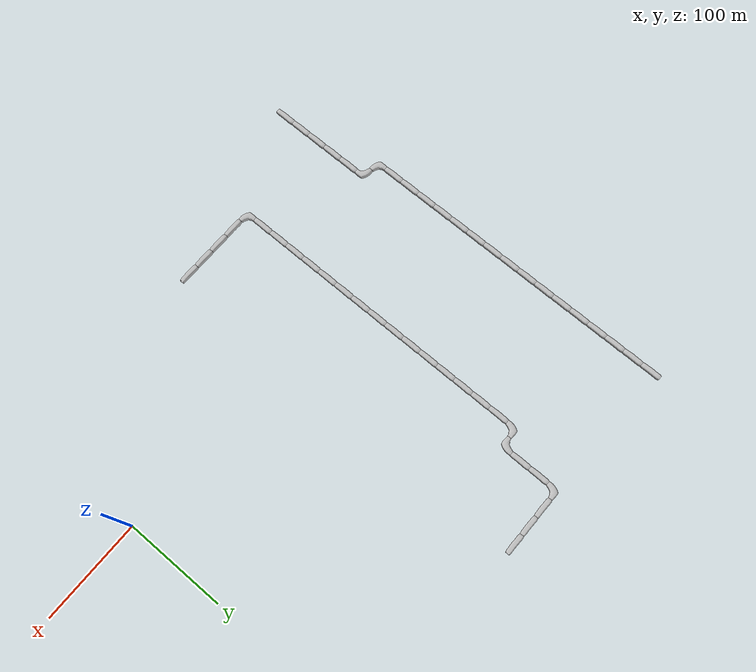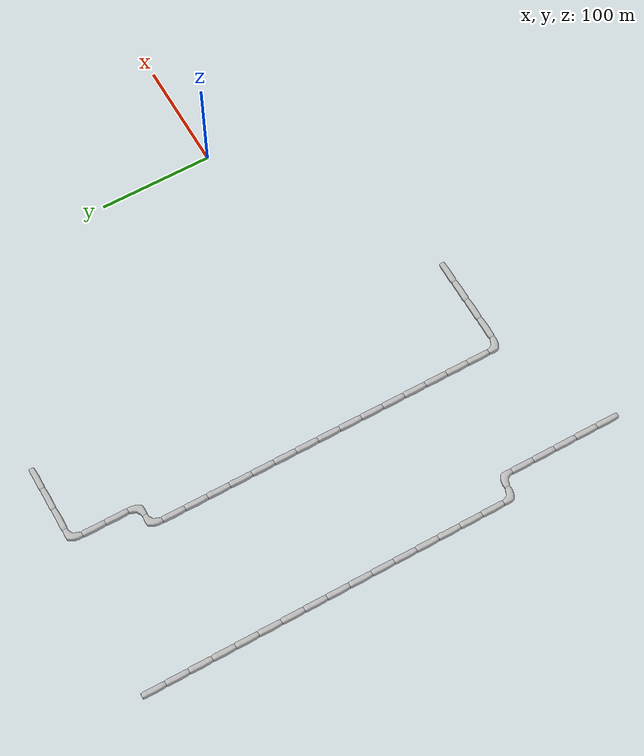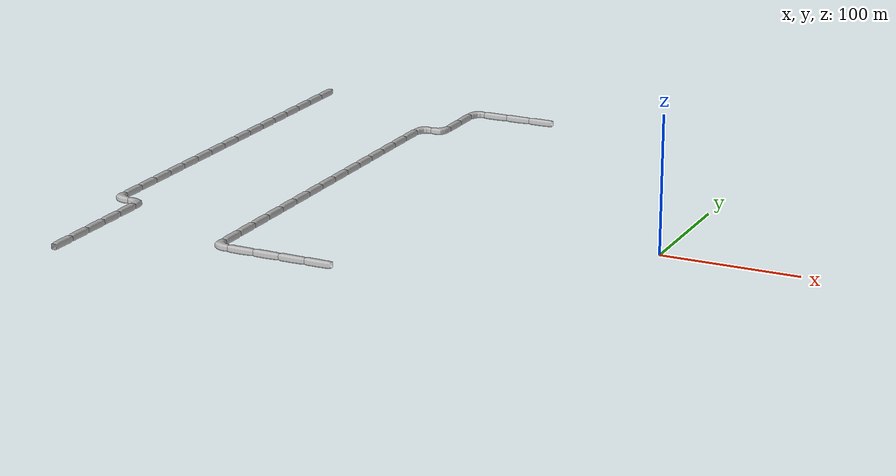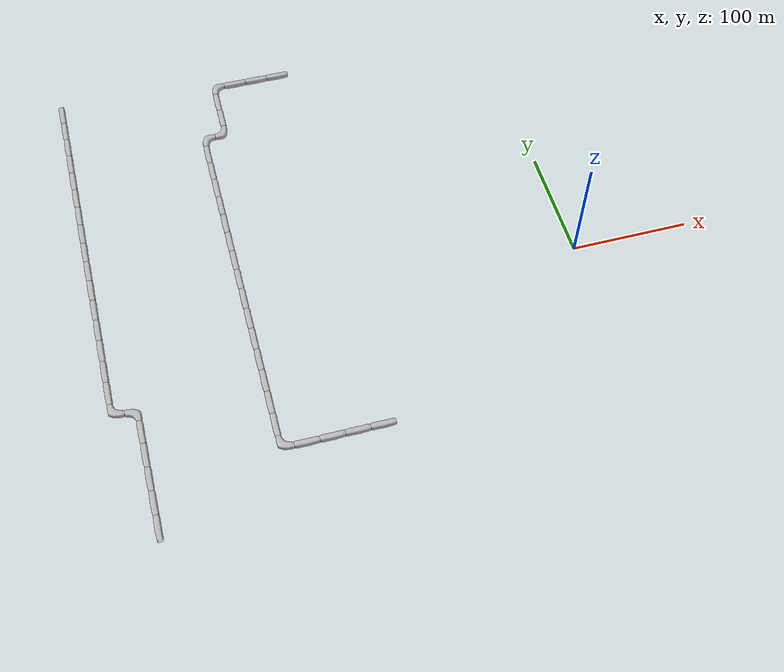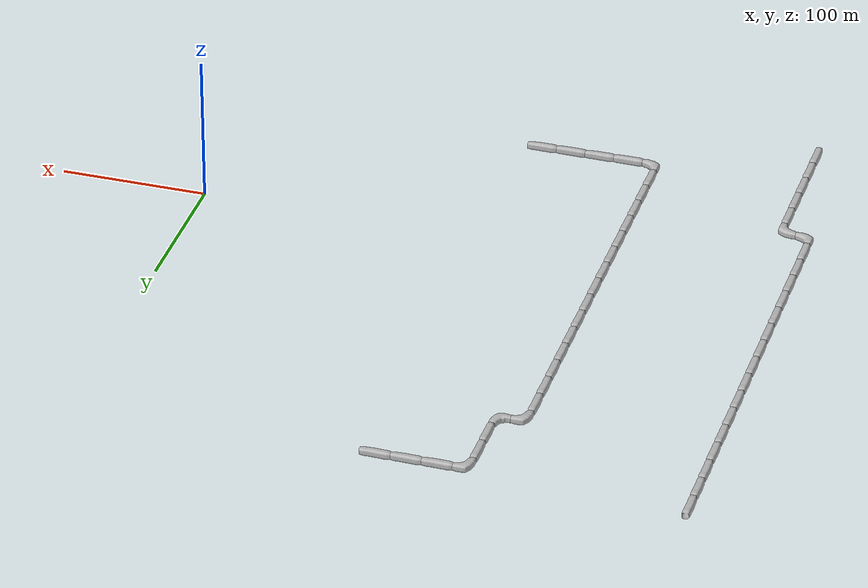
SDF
<sdf version="1.6">
 <world name="cave_8000_32">
  <include>
   <static>true</static>
   <name>cave_-19_-8</name>
   <pose>-380 -160 0 0 0 0.0</pose>
   <uri>model://cave_straight_20m</uri>
  </include>
  <include>
   <static>true</static>
   <name>cave_-19_-7</name>
   <pose>-380 -140 0 0 0 0.0</pose>
   <uri>model://cave_straight_20m</uri>
  </include>
  <include>
   <static>true</static>
   <name>cave_-19_-6</name>
   <pose>-380 -120 0 0 0 0.0</pose>
   <uri>model://cave_straight_20m</uri>
  </include>
  <include>
   <static>true</static>
   <name>cave_-19_-5</name>
   <pose>-380 -100 0 0 0 0.0</pose>
   <uri>model://cave_straight_20m</uri>
  </include>
  <include>
   <static>true</static>
   <name>cave_-19_-4</name>
   <pose>-380 -80 0 0 0 0.0</pose>
   <uri>model://cave_straight_20m</uri>
  </include>
  <include>
   <static>true</static>
   <name>cave_-19_-3</name>
   <pose>-380 -60 0 0 0 3.141592653589793</pose>
   <uri>model://cave_L_20m</uri>
  </include>
  <include>
   <static>true</static>
   <name>cave_-20_-3</name>
   <pose>-400 -60 0 0 0 0.0</pose>
   <uri>model://cave_L_20m</uri>
  </include>
  <include>
   <static>true</static>
   <name>cave_-20_-2</name>
   <pose>-400 -40 0 0 0 0.0</pose>
   <uri>model://cave_straight_20m</uri>
  </include>
  <include>
   <static>true</static>
   <name>cave_-20_-1</name>
   <pose>-400 -20 0 0 0 0.0</pose>
   <uri>model://cave_straight_20m</uri>
  </include>
  <include>
   <static>true</static>
   <name>cave_-20_0</name>
   <pose>-400 0 0 0 0 0.0</pose>
   <uri>model://cave_straight_20m</uri>
  </include>
  <include>
   <static>true</static>
   <name>cave_-20_1</name>
   <pose>-400 20 0 0 0 0.0</pose>
   <uri>model://cave_straight_20m</uri>
  </include>
  <include>
   <static>true</static>
   <name>cave_-20_2</name>
   <pose>-400 40 0 0 0 0.0</pose>
   <uri>model://cave_straight_20m</uri>
  </include>
  <include>
   <static>true</static>
   <name>cave_-20_3</name>
   <pose>-400 60 0 0 0 0.0</pose>
   <uri>model://cave_straight_20m</uri>
  </include>
  <include>
   <static>true</static>
   <name>cave_-20_4</name>
   <pose>-400 80 0 0 0 0.0</pose>
   <uri>model://cave_straight_20m</uri>
  </include>
  <include>
   <static>true</static>
   <name>cave_-20_5</name>
   <pose>-400 100 0 0 0 0.0</pose>
   <uri>model://cave_straight_20m</uri>
  </include>
  <include>
   <static>true</static>
   <name>cave_-20_6</name>
   <pose>-400 120 0 0 0 0.0</pose>
   <uri>model://cave_straight_20m</uri>
  </include>
  <include>
   <static>true</static>
   <name>cave_-20_7</name>
   <pose>-400 140 0 0 0 0.0</pose>
   <uri>model://cave_straight_20m</uri>
  </include>
  <include>
   <static>true</static>
   <name>cave_-20_8</name>
   <pose>-400 160 0 0 0 0.0</pose>
   <uri>model://cave_straight_20m</uri>
  </include>
  <include>
   <static>true</static>
   <name>cave_-20_9</name>
   <pose>-400 180 0 0 0 0.0</pose>
   <uri>model://cave_straight_20m</uri>
  </include>
  <include>
   <static>true</static>
   <name>cave_-20_10</name>
   <pose>-400 200 0 0 0 0.0</pose>
   <uri>model://cave_straight_20m</uri>
  </include>
  <include>
   <static>true</static>
   <name>cave_-20_11</name>
   <pose>-400 220 0 0 0 0.0</pose>
   <uri>model://cave_straight_20m</uri>
  </include>
  <include>
   <static>true</static>
   <name>cave_-20_12</name>
   <pose>-400 240 0 0 0 0.0</pose>
   <uri>model://cave_straight_20m</uri>
  </include>
  <include>
   <static>true</static>
   <name>cave_-20_13</name>
   <pose>-400 260 0 0 0 0.0</pose>
   <uri>model://cave_straight_20m</uri>
  </include>
  <include>
   <static>true</static>
   <name>cave_-10_-6</name>
   <pose>-200 -120 0 0 0 1.5707963267948966</pose>
   <uri>model://cave_straight_20m</uri>
  </include>
  <include>
   <static>true</static>
   <name>cave_-11_-6</name>
   <pose>-220 -120 0 0 0 1.5707963267948966</pose>
   <uri>model://cave_straight_20m</uri>
  </include>
  <include>
   <static>true</static>
   <name>cave_-12_-6</name>
   <pose>-240 -120 0 0 0 1.5707963267948966</pose>
   <uri>model://cave_straight_20m</uri>
  </include>
  <include>
   <static>true</static>
   <name>cave_-13_-6</name>
   <pose>-260 -120 0 0 0 1.5707963267948966</pose>
   <uri>model://cave_straight_20m</uri>
  </include>
  <include>
   <static>true</static>
   <name>cave_-14_-6</name>
   <pose>-280 -120 0 0 0 0.0</pose>
   <uri>model://cave_L_20m</uri>
  </include>
  <include>
   <static>true</static>
   <name>cave_-14_-5</name>
   <pose>-280 -100 0 0 0 0.0</pose>
   <uri>model://cave_straight_20m</uri>
  </include>
  <include>
   <static>true</static>
   <name>cave_-14_-4</name>
   <pose>-280 -80 0 0 0 0.0</pose>
   <uri>model://cave_straight_20m</uri>
  </include>
  <include>
   <static>true</static>
   <name>cave_-14_-3</name>
   <pose>-280 -60 0 0 0 0.0</pose>
   <uri>model://cave_straight_20m</uri>
  </include>
  <include>
   <static>true</static>
   <name>cave_-14_-2</name>
   <pose>-280 -40 0 0 0 0.0</pose>
   <uri>model://cave_straight_20m</uri>
  </include>
  <include>
   <static>true</static>
   <name>cave_-14_-1</name>
   <pose>-280 -20 0 0 0 0.0</pose>
   <uri>model://cave_straight_20m</uri>
  </include>
  <include>
   <static>true</static>
   <name>cave_-14_0</name>
   <pose>-280 0 0 0 0 0.0</pose>
   <uri>model://cave_straight_20m</uri>
  </include>
  <include>
   <static>true</static>
   <name>cave_-14_1</name>
   <pose>-280 20 0 0 0 0.0</pose>
   <uri>model://cave_straight_20m</uri>
  </include>
  <include>
   <static>true</static>
   <name>cave_-14_2</name>
   <pose>-280 40 0 0 0 0.0</pose>
   <uri>model://cave_straight_20m</uri>
  </include>
  <include>
   <static>true</static>
   <name>cave_-14_3</name>
   <pose>-280 60 0 0 0 0.0</pose>
   <uri>model://cave_straight_20m</uri>
  </include>
  <include>
   <static>true</static>
   <name>cave_-14_4</name>
   <pose>-280 80 0 0 0 0.0</pose>
   <uri>model://cave_straight_20m</uri>
  </include>
  <include>
   <static>true</static>
   <name>cave_-14_5</name>
   <pose>-280 100 0 0 0 0.0</pose>
   <uri>model://cave_straight_20m</uri>
  </include>
  <include>
   <static>true</static>
   <name>cave_-14_6</name>
   <pose>-280 120 0 0 0 0.0</pose>
   <uri>model://cave_straight_20m</uri>
  </include>
  <include>
   <static>true</static>
   <name>cave_-14_7</name>
   <pose>-280 140 0 0 0 0.0</pose>
   <uri>model://cave_straight_20m</uri>
  </include>
  <include>
   <static>true</static>
   <name>cave_-14_8</name>
   <pose>-280 160 0 0 0 0.0</pose>
   <uri>model://cave_straight_20m</uri>
  </include>
  <include>
   <static>true</static>
   <name>cave_-14_9</name>
   <pose>-280 180 0 0 0 0.0</pose>
   <uri>model://cave_straight_20m</uri>
  </include>
  <include>
   <static>true</static>
   <name>cave_-14_10</name>
   <pose>-280 200 0 0 0 -1.5707963267948966</pose>
   <uri>model://cave_L_20m</uri>
  </include>
  <include>
   <static>true</static>
   <name>cave_-13_10</name>
   <pose>-260 200 0 0 0 1.5707963267948966</pose>
   <uri>model://cave_L_20m</uri>
  </include>
  <include>
   <static>true</static>
   <name>cave_-13_11</name>
   <pose>-260 220 0 0 0 0.0</pose>
   <uri>model://cave_straight_20m</uri>
  </include>
  <include>
   <static>true</static>
   <name>cave_-13_12</name>
   <pose>-260 240 0 0 0 0.0</pose>
   <uri>model://cave_straight_20m</uri>
  </include>
  <include>
   <static>true</static>
   <name>cave_-13_13</name>
   <pose>-260 260 0 0 0 -1.5707963267948966</pose>
   <uri>model://cave_L_20m</uri>
  </include>
  <include>
   <static>true</static>
   <name>cave_-12_13</name>
   <pose>-240 260 0 0 0 1.5707963267948966</pose>
   <uri>model://cave_straight_20m</uri>
  </include>
  <include>
   <static>true</static>
   <name>cave_-11_13</name>
   <pose>-220 260 0 0 0 1.5707963267948966</pose>
   <uri>model://cave_straight_20m</uri>
  </include>
  <include>
   <static>true</static>
   <name>cave_-10_13</name>
   <pose>-200 260 0 0 0 1.5707963267948966</pose>
   <uri>model://cave_straight_20m</uri>
  </include>
 </world>
</sdf>
